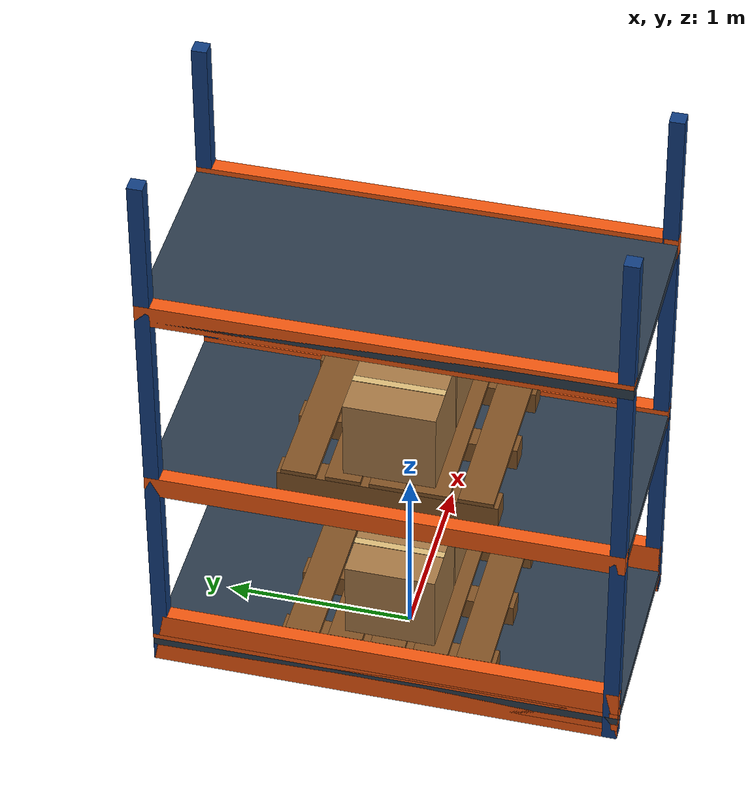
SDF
<?xml version="1.0"?>
<sdf version="1.9">
  <model name="wh_rack">
    <static>true</static>
    <link name="structure">
      <visual name="post_0_0_visual">
        <pose>-0.56 -1.21 1.6 0 0 0</pose>
        <geometry>
          <box>
            <size>0.08 0.08 3.2</size>
          </box>
        </geometry>
        <material>
          <ambient>0.07 0.24 0.5 1</ambient>
          <diffuse>0.07 0.24 0.5 1</diffuse>
          <specular>0.06 0.06 0.06 1</specular>
        </material>
      </visual>
      <collision name="post_0_0_collision">
        <pose>-0.56 -1.21 1.6 0 0 0</pose>
        <geometry>
          <box>
            <size>0.08 0.08 3.2</size>
          </box>
        </geometry>
      </collision>
      <visual name="post_0_1_visual">
        <pose>-0.56 1.21 1.6 0 0 0</pose>
        <geometry>
          <box>
            <size>0.08 0.08 3.2</size>
          </box>
        </geometry>
        <material>
          <ambient>0.07 0.24 0.5 1</ambient>
          <diffuse>0.07 0.24 0.5 1</diffuse>
          <specular>0.06 0.06 0.06 1</specular>
        </material>
      </visual>
      <collision name="post_0_1_collision">
        <pose>-0.56 1.21 1.6 0 0 0</pose>
        <geometry>
          <box>
            <size>0.08 0.08 3.2</size>
          </box>
        </geometry>
      </collision>
      <visual name="kickrail_0_visual">
        <pose>-0.56 0 0.16 0 0 0</pose>
        <geometry>
          <box>
            <size>0.08 2.5 0.32</size>
          </box>
        </geometry>
        <material>
          <ambient>0.94 0.34 0.06 1</ambient>
          <diffuse>0.94 0.34 0.06 1</diffuse>
          <specular>0.06 0.06 0.06 1</specular>
        </material>
      </visual>
      <collision name="kickrail_0_collision">
        <pose>-0.56 0 0.16 0 0 0</pose>
        <geometry>
          <box>
            <size>0.08 2.5 0.32</size>
          </box>
        </geometry>
      </collision>
      <visual name="post_1_0_visual">
        <pose>0.56 -1.21 1.6 0 0 0</pose>
        <geometry>
          <box>
            <size>0.08 0.08 3.2</size>
          </box>
        </geometry>
        <material>
          <ambient>0.07 0.24 0.5 1</ambient>
          <diffuse>0.07 0.24 0.5 1</diffuse>
          <specular>0.06 0.06 0.06 1</specular>
        </material>
      </visual>
      <collision name="post_1_0_collision">
        <pose>0.56 -1.21 1.6 0 0 0</pose>
        <geometry>
          <box>
            <size>0.08 0.08 3.2</size>
          </box>
        </geometry>
      </collision>
      <visual name="post_1_1_visual">
        <pose>0.56 1.21 1.6 0 0 0</pose>
        <geometry>
          <box>
            <size>0.08 0.08 3.2</size>
          </box>
        </geometry>
        <material>
          <ambient>0.07 0.24 0.5 1</ambient>
          <diffuse>0.07 0.24 0.5 1</diffuse>
          <specular>0.06 0.06 0.06 1</specular>
        </material>
      </visual>
      <collision name="post_1_1_collision">
        <pose>0.56 1.21 1.6 0 0 0</pose>
        <geometry>
          <box>
            <size>0.08 0.08 3.2</size>
          </box>
        </geometry>
      </collision>
      <visual name="kickrail_1_visual">
        <pose>0.56 0 0.16 0 0 0</pose>
        <geometry>
          <box>
            <size>0.08 2.5 0.32</size>
          </box>
        </geometry>
        <material>
          <ambient>0.94 0.34 0.06 1</ambient>
          <diffuse>0.94 0.34 0.06 1</diffuse>
          <specular>0.06 0.06 0.06 1</specular>
        </material>
      </visual>
      <collision name="kickrail_1_collision">
        <pose>0.56 0 0.16 0 0 0</pose>
        <geometry>
          <box>
            <size>0.08 2.5 0.32</size>
          </box>
        </geometry>
      </collision>
      <visual name="shelf_0_visual">
        <pose>0 0 0.12 0 0 0</pose>
        <geometry>
          <box>
            <size>1.2 2.5 0.06</size>
          </box>
        </geometry>
        <material>
          <ambient>0.17 0.23 0.29 1</ambient>
          <diffuse>0.17 0.23 0.29 1</diffuse>
          <specular>0.06 0.06 0.06 1</specular>
        </material>
      </visual>
      <collision name="shelf_0_collision">
        <pose>0 0 0.12 0 0 0</pose>
        <geometry>
          <box>
            <size>1.2 2.5 0.06</size>
          </box>
        </geometry>
      </collision>
      <visual name="beam_0_0_visual">
        <pose>-0.56 0 0.12 0 0 0</pose>
        <geometry>
          <box>
            <size>0.08 2.5 0.12</size>
          </box>
        </geometry>
        <material>
          <ambient>0.94 0.34 0.06 1</ambient>
          <diffuse>0.94 0.34 0.06 1</diffuse>
          <specular>0.06 0.06 0.06 1</specular>
        </material>
      </visual>
      <visual name="beam_0_1_visual">
        <pose>0.56 0 0.12 0 0 0</pose>
        <geometry>
          <box>
            <size>0.08 2.5 0.12</size>
          </box>
        </geometry>
        <material>
          <ambient>0.94 0.34 0.06 1</ambient>
          <diffuse>0.94 0.34 0.06 1</diffuse>
          <specular>0.06 0.06 0.06 1</specular>
        </material>
      </visual>
      <visual name="shelf_1_visual">
        <pose>0 0 1.25 0 0 0</pose>
        <geometry>
          <box>
            <size>1.2 2.5 0.06</size>
          </box>
        </geometry>
        <material>
          <ambient>0.17 0.23 0.29 1</ambient>
          <diffuse>0.17 0.23 0.29 1</diffuse>
          <specular>0.06 0.06 0.06 1</specular>
        </material>
      </visual>
      <collision name="shelf_1_collision">
        <pose>0 0 1.25 0 0 0</pose>
        <geometry>
          <box>
            <size>1.2 2.5 0.06</size>
          </box>
        </geometry>
      </collision>
      <visual name="beam_1_0_visual">
        <pose>-0.56 0 1.25 0 0 0</pose>
        <geometry>
          <box>
            <size>0.08 2.5 0.12</size>
          </box>
        </geometry>
        <material>
          <ambient>0.94 0.34 0.06 1</ambient>
          <diffuse>0.94 0.34 0.06 1</diffuse>
          <specular>0.06 0.06 0.06 1</specular>
        </material>
      </visual>
      <visual name="beam_1_1_visual">
        <pose>0.56 0 1.25 0 0 0</pose>
        <geometry>
          <box>
            <size>0.08 2.5 0.12</size>
          </box>
        </geometry>
        <material>
          <ambient>0.94 0.34 0.06 1</ambient>
          <diffuse>0.94 0.34 0.06 1</diffuse>
          <specular>0.06 0.06 0.06 1</specular>
        </material>
      </visual>
      <visual name="shelf_2_visual">
        <pose>0 0 2.4 0 0 0</pose>
        <geometry>
          <box>
            <size>1.2 2.5 0.06</size>
          </box>
        </geometry>
        <material>
          <ambient>0.17 0.23 0.29 1</ambient>
          <diffuse>0.17 0.23 0.29 1</diffuse>
          <specular>0.06 0.06 0.06 1</specular>
        </material>
      </visual>
      <collision name="shelf_2_collision">
        <pose>0 0 2.4 0 0 0</pose>
        <geometry>
          <box>
            <size>1.2 2.5 0.06</size>
          </box>
        </geometry>
      </collision>
      <visual name="beam_2_0_visual">
        <pose>-0.56 0 2.4 0 0 0</pose>
        <geometry>
          <box>
            <size>0.08 2.5 0.12</size>
          </box>
        </geometry>
        <material>
          <ambient>0.94 0.34 0.06 1</ambient>
          <diffuse>0.94 0.34 0.06 1</diffuse>
          <specular>0.06 0.06 0.06 1</specular>
        </material>
      </visual>
      <visual name="beam_2_1_visual">
        <pose>0.56 0 2.4 0 0 0</pose>
        <geometry>
          <box>
            <size>0.08 2.5 0.12</size>
          </box>
        </geometry>
        <material>
          <ambient>0.94 0.34 0.06 1</ambient>
          <diffuse>0.94 0.34 0.06 1</diffuse>
          <specular>0.06 0.06 0.06 1</specular>
        </material>
      </visual>
    </link>
    <include>
      <uri>model://wh_loaded_pallet</uri>
      <name>load_0</name>
      <pose>0 0 0.15 0 0 0</pose>
    </include>
    <include>
      <uri>model://wh_loaded_pallet</uri>
      <name>load_1</name>
      <pose>0 0 1.28 0 0 0</pose>
    </include>
  </model>
</sdf>

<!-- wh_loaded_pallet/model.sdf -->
<sdf version="1.9">
  <model name="wh_loaded_pallet">
    <static>true</static>
    <include>
      <uri>model://wh_pallet</uri>
      <name>pallet</name>
      <pose>0 0 0 0 0 0</pose>
    </include>
    <include>
      <uri>model://wh_box</uri>
      <name>box_0_0_0</name>
      <pose>-0.23 0 0.15 0 0 0</pose>
    </include>
    <include>
      <uri>model://wh_box</uri>
      <name>box_0_1_0</name>
      <pose>0.23 0 0.15 0 0 0</pose>
    </include>
  </model>
</sdf>

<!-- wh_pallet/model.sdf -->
<sdf version="1.9">
  <model name="wh_pallet">
    <static>true</static>
    <link name="body">
      <collision name="pallet_collision">
        <pose>0 0 0.075 0 0 0</pose>
        <geometry>
          <box>
            <size>1 1.15 0.15</size>
          </box>
        </geometry>
      </collision>
      <visual name="slat_0_visual">
        <pose>0 -0.46 0.1375 0 0 0</pose>
        <geometry>
          <box>
            <size>1 0.184 0.025</size>
          </box>
        </geometry>
        <material>
          <ambient>0.5 0.32 0.14 1</ambient>
          <diffuse>0.5 0.32 0.14 1</diffuse>
          <specular>0.06 0.06 0.06 1</specular>
        </material>
      </visual>
      <visual name="slat_1_visual">
        <pose>0 -0.23 0.1375 0 0 0</pose>
        <geometry>
          <box>
            <size>1 0.184 0.025</size>
          </box>
        </geometry>
        <material>
          <ambient>0.5 0.32 0.14 1</ambient>
          <diffuse>0.5 0.32 0.14 1</diffuse>
          <specular>0.06 0.06 0.06 1</specular>
        </material>
      </visual>
      <visual name="slat_2_visual">
        <pose>0 0 0.1375 0 0 0</pose>
        <geometry>
          <box>
            <size>1 0.184 0.025</size>
          </box>
        </geometry>
        <material>
          <ambient>0.5 0.32 0.14 1</ambient>
          <diffuse>0.5 0.32 0.14 1</diffuse>
          <specular>0.06 0.06 0.06 1</specular>
        </material>
      </visual>
      <visual name="slat_3_visual">
        <pose>0 0.23 0.1375 0 0 0</pose>
        <geometry>
          <box>
            <size>1 0.184 0.025</size>
          </box>
        </geometry>
        <material>
          <ambient>0.5 0.32 0.14 1</ambient>
          <diffuse>0.5 0.32 0.14 1</diffuse>
          <specular>0.06 0.06 0.06 1</specular>
        </material>
      </visual>
      <visual name="slat_4_visual">
        <pose>0 0.46 0.1375 0 0 0</pose>
        <geometry>
          <box>
            <size>1 0.184 0.025</size>
          </box>
        </geometry>
        <material>
          <ambient>0.5 0.32 0.14 1</ambient>
          <diffuse>0.5 0.32 0.14 1</diffuse>
          <specular>0.06 0.06 0.06 1</specular>
        </material>
      </visual>
      <visual name="runner_0_visual">
        <pose>-0.44 0 0.0625 0 0 0</pose>
        <geometry>
          <box>
            <size>0.12 1.15 0.125</size>
          </box>
        </geometry>
        <material>
          <ambient>0.5 0.32 0.14 1</ambient>
          <diffuse>0.5 0.32 0.14 1</diffuse>
          <specular>0.06 0.06 0.06 1</specular>
        </material>
      </visual>
      <visual name="runner_1_visual">
        <pose>0 0 0.0625 0 0 0</pose>
        <geometry>
          <box>
            <size>0.12 1.15 0.125</size>
          </box>
        </geometry>
        <material>
          <ambient>0.5 0.32 0.14 1</ambient>
          <diffuse>0.5 0.32 0.14 1</diffuse>
          <specular>0.06 0.06 0.06 1</specular>
        </material>
      </visual>
      <visual name="runner_2_visual">
        <pose>0.44 0 0.0625 0 0 0</pose>
        <geometry>
          <box>
            <size>0.12 1.15 0.125</size>
          </box>
        </geometry>
        <material>
          <ambient>0.5 0.32 0.14 1</ambient>
          <diffuse>0.5 0.32 0.14 1</diffuse>
          <specular>0.06 0.06 0.06 1</specular>
        </material>
      </visual>
    </link>
  </model>
</sdf>

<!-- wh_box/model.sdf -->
<sdf version="1.9">
  <model name="wh_box">
    <static>true</static>
    <link name="body">
      <visual name="carton_visual">
        <pose>0 0 0.225 0 0 0</pose>
        <geometry>
          <box>
            <size>0.44 0.48 0.45</size>
          </box>
        </geometry>
        <material>
          <ambient>0.65 0.47 0.27 1</ambient>
          <diffuse>0.65 0.47 0.27 1</diffuse>
          <specular>0.06 0.06 0.06 1</specular>
        </material>
      </visual>
      <collision name="carton_collision">
        <pose>0 0 0.225 0 0 0</pose>
        <geometry>
          <box>
            <size>0.44 0.48 0.45</size>
          </box>
        </geometry>
      </collision>
      <visual name="tape_visual">
        <pose>0 0 0.45125 0 0 0</pose>
        <geometry>
          <box>
            <size>0.04 0.48 0.0025</size>
          </box>
        </geometry>
        <material>
          <ambient>0.86 0.73 0.47 1</ambient>
          <diffuse>0.86 0.73 0.47 1</diffuse>
          <specular>0.06 0.06 0.06 1</specular>
        </material>
      </visual>
    </link>
  </model>
</sdf>
